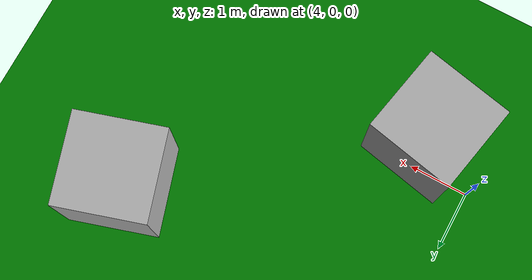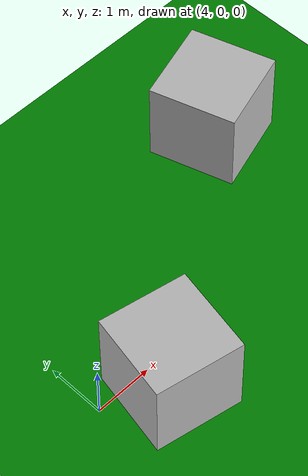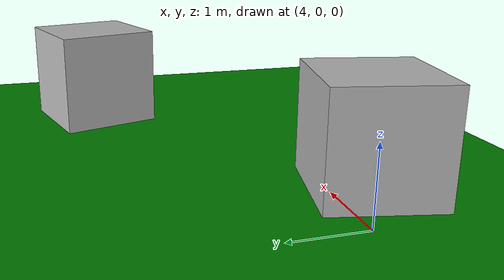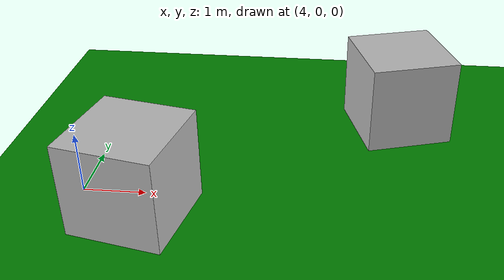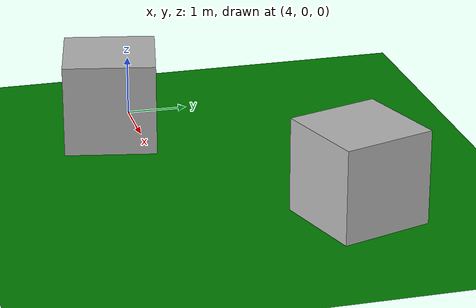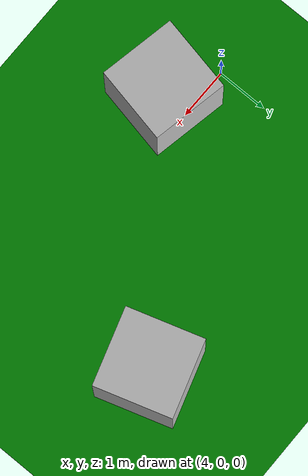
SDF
<?xml version="1.0" ?>

<!--

    This sdf file is adapted from the Gazebo diff_drive plugin demo found at
    '/opt/ros/kilted/opt/gz_sim_vendor/share/gz/gz-sim9/worlds/diff_drive.sdf'

-->

<sdf version="1.6">
    <world name="test_world1">
        <physics name="1ms" type="ignored">
        <max_step_size>0.001</max_step_size>
        <real_time_factor>1.0</real_time_factor>
        </physics>
        <plugin
        filename="gz-sim-physics-system"
        name="gz::sim::systems::Physics">
        </plugin>
        <plugin
        filename="gz-sim-user-commands-system"
        name="gz::sim::systems::UserCommands">
        </plugin>
        <plugin
        filename="gz-sim-scene-broadcaster-system"
        name="gz::sim::systems::SceneBroadcaster">
        </plugin>

        <!--
            Plugin for LiDAR
        -->
        <plugin
        filename="gz-sim-sensors-system"
        name="gz::sim::systems::Sensors">
        <render_engine>ogre2</render_engine>
        </plugin>

        <light type="directional" name="sun">
        <cast_shadows>true</cast_shadows>
        <pose>0 0 10 0 0 0</pose>
        <diffuse>1 1 1 1</diffuse>
        <specular>0.5 0.5 0.5 1</specular>
        <attenuation>
            <range>100</range>
            <constant>0.9</constant>
            <linear>0.01</linear>
            <quadratic>0.001</quadratic>
        </attenuation>
        <direction>-0.5 0.1 -0.9</direction>
        </light>

        <model name="ground_plane">
        <static>true</static>
        <link name="link">
            <collision name="collision">
            <geometry>
                <plane>
                <normal>0 0 1</normal>
                <size>200 20</size>
                </plane>
            </geometry>
            </collision>
            <visual name="visual">
            <geometry>
                <plane>
                <normal>0 0 1</normal>
                <size>200 20</size>
                </plane>
            </geometry>
            <material>
                <ambient>0 0.5 0 1</ambient>
                <diffuse>0 0.5 0 1</diffuse>
                <specular>0 0.1 0 1</specular>
            </material>
            </visual>
        </link>
        </model>

        <model name="box">
            <pose>5 -0.5 0.75 0 0 -0.2</pose>
            <static>true</static>
            <link name="link">
                <collision name="collision">
                    <geometry>
                        <box>
                            <size>1.5 1.5 1.5</size>
                        </box>
                    </geometry>
                </collision>
                <visual name="visual">
                    <geometry>
                        <box>
                            <size>1.5 1.5 1.5</size>
                        </box>
                    </geometry>
                </visual>
            </link>
        </model>

        <model name="box1">
            <pose>9 2.5 0.75 0 0 0.3</pose>
            <static>true</static>
            <link name="link">
                <collision name="collision">
                    <geometry>
                        <box>
                            <size>1.5 1.5 1.5</size>
                        </box>
                    </geometry>
                </collision>
                <visual name="visual">
                    <geometry>
                        <box>
                            <size>1.5 1.5 1.5</size>
                        </box>
                    </geometry>
                </visual>
            </link>
        </model>
    </world>
</sdf>
